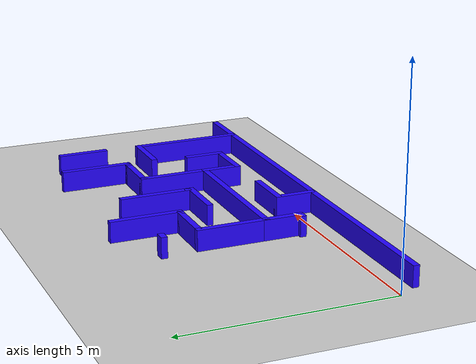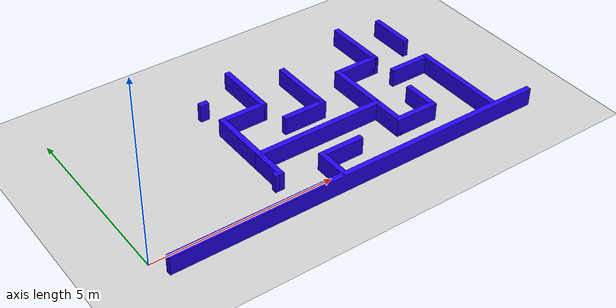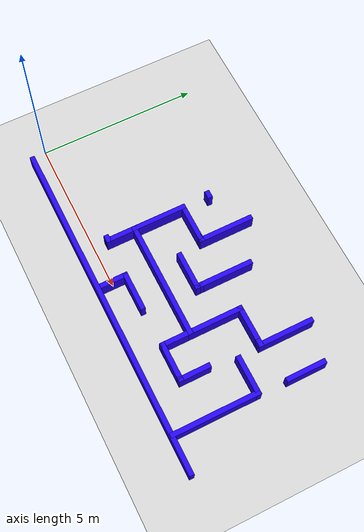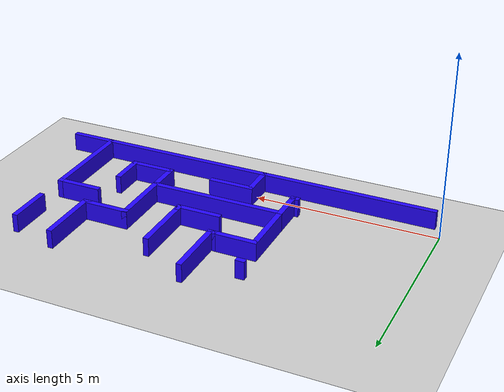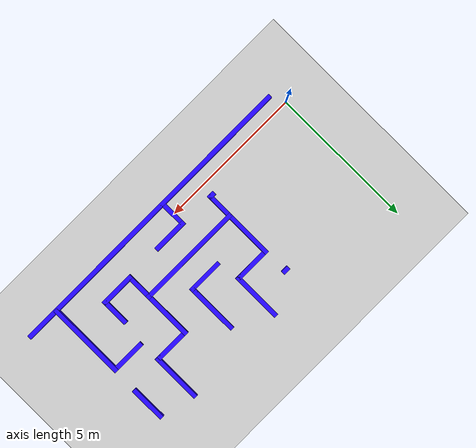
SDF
<sdf version="1.7">
 <world name="default">
  <model name="ground_plane">
   <static>1</static>
   <link name="link">
    <collision name="collision">
     <geometry><plane><normal>0 0 1</normal><size>100 100</size></plane></geometry>
     <surface><friction><ode><mu>100</mu><mu2>50</mu2></ode></friction></surface>
    </collision>
    <visual name="visual">
     <cast_shadows>0</cast_shadows>
     <geometry><plane><normal>0 0 1</normal><size>100 100</size></plane></geometry>
     <material>
      <script><uri>file://media/materials/scripts/gazebo.material</uri><name>Gazebo/Grey</name></script>
     </material>
    </visual>
   </link>
  </model>
  <model name="maze_blue">
   <link name="Wall_102">
    <pose>1.2875 -1.6595 0 0 0 -1.5708</pose>
    <visual name="Wall_102_Visual">
     <pose>0 0 0.25 0 -0 0</pose>
     <geometry><box><size>0.25 0.15 0.5</size></box></geometry>
     <material>
      <script><uri>file://media/materials/scripts/gazebo.material</uri><name>Gazebo/Grey</name></script>
      <ambient>0.14 0.012 1 1</ambient>
      <shader type="pixel"/>
     </material>
     <meta><layer>0</layer></meta>
    </visual>
    <collision name="Wall_102_Collision">
     <pose>0 0 0.25 0 -0 0</pose>
     <geometry><box><size>0.25 0.15 0.5</size></box></geometry>
     <surface>
      <friction>
       <ode><mu>1</mu><mu2>1</mu2><fdir1>0 0 0</fdir1><slip1>0</slip1><slip2>0</slip2></ode>
       <torsional>
        <coefficient>1</coefficient>
        <patch_radius>0</patch_radius>
        <surface_radius>0</surface_radius>
        <use_patch_radius>1</use_patch_radius>
        <ode><slip>0</slip></ode>
       </torsional>
      </friction>
      <bounce><restitution_coefficient>0</restitution_coefficient><threshold>1e+06</threshold></bounce>
      <contact>
       <collide_without_contact>0</collide_without_contact>
       <collide_without_contact_bitmask>1</collide_without_contact_bitmask>
       <collide_bitmask>1</collide_bitmask>
       <ode>
        <soft_cfm>0</soft_cfm>
        <soft_erp>0.2</soft_erp>
        <kp>1e+13</kp>
        <kd>1</kd>
        <max_vel>0.01</max_vel>
        <min_depth>0</min_depth>
       </ode>
       <bullet>
        <split_impulse>1</split_impulse>
        <split_impulse_penetration_threshold>-0.01</split_impulse_penetration_threshold>
        <soft_cfm>0</soft_cfm>
        <soft_erp>0.2</soft_erp>
        <kp>1e+13</kp>
        <kd>1</kd>
       </bullet>
      </contact>
     </surface>
    </collision>
   </link>
   <link name="Wall_103">
    <pose>0.7375 -1.7095 0 0 -0 3.14159</pose>
    <visual name="Wall_103_Visual">
     <pose>0 0 0.25 0 -0 0</pose>
     <geometry><box><size>1.25 0.15 0.5</size></box></geometry>
     <material>
      <script><uri>file://media/materials/scripts/gazebo.material</uri><name>Gazebo/Grey</name></script>
      <ambient>0.14 0.012 1 1</ambient>
      <shader type="pixel"/>
     </material>
     <meta><layer>0</layer></meta>
    </visual>
    <collision name="Wall_103_Collision">
     <pose>0 0 0.25 0 -0 0</pose>
     <geometry><box><size>1.25 0.15 0.5</size></box></geometry>
     <surface>
      <friction>
       <ode><mu>1</mu><mu2>1</mu2><fdir1>0 0 0</fdir1><slip1>0</slip1><slip2>0</slip2></ode>
       <torsional>
        <coefficient>1</coefficient>
        <patch_radius>0</patch_radius>
        <surface_radius>0</surface_radius>
        <use_patch_radius>1</use_patch_radius>
        <ode><slip>0</slip></ode>
       </torsional>
      </friction>
      <bounce><restitution_coefficient>0</restitution_coefficient><threshold>1e+06</threshold></bounce>
      <contact>
       <collide_without_contact>0</collide_without_contact>
       <collide_without_contact_bitmask>1</collide_without_contact_bitmask>
       <collide_bitmask>1</collide_bitmask>
       <ode>
        <soft_cfm>0</soft_cfm>
        <soft_erp>0.2</soft_erp>
        <kp>1e+13</kp>
        <kd>1</kd>
        <max_vel>0.01</max_vel>
        <min_depth>0</min_depth>
       </ode>
       <bullet>
        <split_impulse>1</split_impulse>
        <split_impulse_penetration_threshold>-0.01</split_impulse_penetration_threshold>
        <soft_cfm>0</soft_cfm>
        <soft_erp>0.2</soft_erp>
        <kp>1e+13</kp>
        <kd>1</kd>
       </bullet>
      </contact>
     </surface>
    </collision>
   </link>
   <link name="Wall_13">
    <pose>-1.2285 -3.3705 0 0 -0 0</pose>
    <visual name="Wall_13_Visual">
     <pose>0 0 0.25 0 -0 0</pose>
     <geometry><box><size>0.25 0.15 0.5</size></box></geometry>
     <material>
      <script><uri>file://media/materials/scripts/gazebo.material</uri><name>Gazebo/Grey</name></script>
      <ambient>0.14 0.012 1 1</ambient>
      <shader type="pixel"/>
     </material>
     <meta><layer>0</layer></meta>
    </visual>
    <collision name="Wall_13_Collision">
     <pose>0 0 0.25 0 -0 0</pose>
     <geometry><box><size>0.25 0.15 0.5</size></box></geometry>
     <surface>
      <friction>
       <ode><mu>1</mu><mu2>1</mu2><fdir1>0 0 0</fdir1><slip1>0</slip1><slip2>0</slip2></ode>
       <torsional>
        <coefficient>1</coefficient>
        <patch_radius>0</patch_radius>
        <surface_radius>0</surface_radius>
        <use_patch_radius>1</use_patch_radius>
        <ode><slip>0</slip></ode>
       </torsional>
      </friction>
      <bounce><restitution_coefficient>0</restitution_coefficient><threshold>1e+06</threshold></bounce>
      <contact>
       <collide_without_contact>0</collide_without_contact>
       <collide_without_contact_bitmask>1</collide_without_contact_bitmask>
       <collide_bitmask>1</collide_bitmask>
       <ode>
        <soft_cfm>0</soft_cfm>
        <soft_erp>0.2</soft_erp>
        <kp>1e+13</kp>
        <kd>1</kd>
        <max_vel>0.01</max_vel>
        <min_depth>0</min_depth>
       </ode>
       <bullet>
        <split_impulse>1</split_impulse>
        <split_impulse_penetration_threshold>-0.01</split_impulse_penetration_threshold>
        <soft_cfm>0</soft_cfm>
        <soft_erp>0.2</soft_erp>
        <kp>1e+13</kp>
        <kd>1</kd>
       </bullet>
      </contact>
     </surface>
    </collision>
   </link>
   <link name="Wall_14">
    <pose>-1.1785 -2.9455 0 0 -0 1.5708</pose>
    <visual name="Wall_14_Visual">
     <pose>0 0 0.25 0 -0 0</pose>
     <geometry><box><size>1 0.15 0.5</size></box></geometry>
     <material>
      <script><uri>file://media/materials/scripts/gazebo.material</uri><name>Gazebo/Grey</name></script>
      <ambient>0.14 0.012 1 1</ambient>
      <shader type="pixel"/>
     </material>
     <meta><layer>0</layer></meta>
    </visual>
    <collision name="Wall_14_Collision">
     <pose>0 0 0.25 0 -0 0</pose>
     <geometry><box><size>1 0.15 0.5</size></box></geometry>
     <surface>
      <friction>
       <ode><mu>1</mu><mu2>1</mu2><fdir1>0 0 0</fdir1><slip1>0</slip1><slip2>0</slip2></ode>
       <torsional>
        <coefficient>1</coefficient>
        <patch_radius>0</patch_radius>
        <surface_radius>0</surface_radius>
        <use_patch_radius>1</use_patch_radius>
        <ode><slip>0</slip></ode>
       </torsional>
      </friction>
      <bounce><restitution_coefficient>0</restitution_coefficient><threshold>1e+06</threshold></bounce>
      <contact>
       <collide_without_contact>0</collide_without_contact>
       <collide_without_contact_bitmask>1</collide_without_contact_bitmask>
       <collide_bitmask>1</collide_bitmask>
       <ode>
        <soft_cfm>0</soft_cfm>
        <soft_erp>0.2</soft_erp>
        <kp>1e+13</kp>
        <kd>1</kd>
        <max_vel>0.01</max_vel>
        <min_depth>0</min_depth>
       </ode>
       <bullet>
        <split_impulse>1</split_impulse>
        <split_impulse_penetration_threshold>-0.01</split_impulse_penetration_threshold>
        <soft_cfm>0</soft_cfm>
        <soft_erp>0.2</soft_erp>
        <kp>1e+13</kp>
        <kd>1</kd>
       </bullet>
      </contact>
     </surface>
    </collision>
   </link>
   <link name="Wall_15">
    <pose>0.6215 -2.5205 0 0 -0 0</pose>
    <visual name="Wall_15_Visual">
     <pose>0 0 0.25 0 -0 0</pose>
     <geometry><box><size>3.75 0.15 0.5</size></box></geometry>
     <material>
      <script><uri>file://media/materials/scripts/gazebo.material</uri><name>Gazebo/Grey</name></script>
      <ambient>0.14 0.012 1 1</ambient>
      <shader type="pixel"/>
     </material>
     <meta><layer>0</layer></meta>
    </visual>
    <collision name="Wall_15_Collision">
     <pose>0 0 0.25 0 -0 0</pose>
     <geometry><box><size>3.75 0.15 0.5</size></box></geometry>
     <surface>
      <friction>
       <ode><mu>1</mu><mu2>1</mu2><fdir1>0 0 0</fdir1><slip1>0</slip1><slip2>0</slip2></ode>
       <torsional>
        <coefficient>1</coefficient>
        <patch_radius>0</patch_radius>
        <surface_radius>0</surface_radius>
        <use_patch_radius>1</use_patch_radius>
        <ode><slip>0</slip></ode>
       </torsional>
      </friction>
      <bounce><restitution_coefficient>0</restitution_coefficient><threshold>1e+06</threshold></bounce>
      <contact>
       <collide_without_contact>0</collide_without_contact>
       <collide_without_contact_bitmask>1</collide_without_contact_bitmask>
       <collide_bitmask>1</collide_bitmask>
       <ode>
        <soft_cfm>0</soft_cfm>
        <soft_erp>0.2</soft_erp>
        <kp>1e+13</kp>
        <kd>1</kd>
        <max_vel>0.01</max_vel>
        <min_depth>0</min_depth>
       </ode>
       <bullet>
        <split_impulse>1</split_impulse>
        <split_impulse_penetration_threshold>-0.01</split_impulse_penetration_threshold>
        <soft_cfm>0</soft_cfm>
        <soft_erp>0.2</soft_erp>
        <kp>1e+13</kp>
        <kd>1</kd>
       </bullet>
      </contact>
     </surface>
    </collision>
   </link>
   <link name="Wall_16">
    <pose>2.4215 -2.9455 0 0 0 -1.5708</pose>
    <visual name="Wall_16_Visual">
     <pose>0 0 0.25 0 -0 0</pose>
     <geometry><box><size>1 0.15 0.5</size></box></geometry>
     <material>
      <script><uri>file://media/materials/scripts/gazebo.material</uri><name>Gazebo/Grey</name></script>
      <ambient>0.14 0.012 1 1</ambient>
      <shader type="pixel"/>
     </material>
     <meta><layer>0</layer></meta>
    </visual>
    <collision name="Wall_16_Collision">
     <pose>0 0 0.25 0 -0 0</pose>
     <geometry><box><size>1 0.15 0.5</size></box></geometry>
     <surface>
      <friction>
       <ode><mu>1</mu><mu2>1</mu2><fdir1>0 0 0</fdir1><slip1>0</slip1><slip2>0</slip2></ode>
       <torsional>
        <coefficient>1</coefficient>
        <patch_radius>0</patch_radius>
        <surface_radius>0</surface_radius>
        <use_patch_radius>1</use_patch_radius>
        <ode><slip>0</slip></ode>
       </torsional>
      </friction>
      <bounce><restitution_coefficient>0</restitution_coefficient><threshold>1e+06</threshold></bounce>
      <contact>
       <collide_without_contact>0</collide_without_contact>
       <collide_without_contact_bitmask>1</collide_without_contact_bitmask>
       <collide_bitmask>1</collide_bitmask>
       <ode>
        <soft_cfm>0</soft_cfm>
        <soft_erp>0.2</soft_erp>
        <kp>1e+13</kp>
        <kd>1</kd>
        <max_vel>0.01</max_vel>
        <min_depth>0</min_depth>
       </ode>
       <bullet>
        <split_impulse>1</split_impulse>
        <split_impulse_penetration_threshold>-0.01</split_impulse_penetration_threshold>
        <soft_cfm>0</soft_cfm>
        <soft_erp>0.2</soft_erp>
        <kp>1e+13</kp>
        <kd>1</kd>
       </bullet>
      </contact>
     </surface>
    </collision>
   </link>
   <link name="Wall_17">
    <pose>2.9715 -3.3705 0 0 -0 0</pose>
    <visual name="Wall_17_Visual">
     <pose>0 0 0.25 0 -0 0</pose>
     <geometry><box><size>1.25 0.15 0.5</size></box></geometry>
     <material>
      <script><uri>file://media/materials/scripts/gazebo.material</uri><name>Gazebo/Grey</name></script>
      <ambient>0.14 0.012 1 1</ambient>
      <shader type="pixel"/>
     </material>
     <meta><layer>0</layer></meta>
    </visual>
    <collision name="Wall_17_Collision">
     <pose>0 0 0.25 0 -0 0</pose>
     <geometry><box><size>1.25 0.15 0.5</size></box></geometry>
     <surface>
      <friction>
       <ode><mu>1</mu><mu2>1</mu2><fdir1>0 0 0</fdir1><slip1>0</slip1><slip2>0</slip2></ode>
       <torsional>
        <coefficient>1</coefficient>
        <patch_radius>0</patch_radius>
        <surface_radius>0</surface_radius>
        <use_patch_radius>1</use_patch_radius>
        <ode><slip>0</slip></ode>
       </torsional>
      </friction>
      <bounce><restitution_coefficient>0</restitution_coefficient><threshold>1e+06</threshold></bounce>
      <contact>
       <collide_without_contact>0</collide_without_contact>
       <collide_without_contact_bitmask>1</collide_without_contact_bitmask>
       <collide_bitmask>1</collide_bitmask>
       <ode>
        <soft_cfm>0</soft_cfm>
        <soft_erp>0.2</soft_erp>
        <kp>1e+13</kp>
        <kd>1</kd>
        <max_vel>0.01</max_vel>
        <min_depth>0</min_depth>
       </ode>
       <bullet>
        <split_impulse>1</split_impulse>
        <split_impulse_penetration_threshold>-0.01</split_impulse_penetration_threshold>
        <soft_cfm>0</soft_cfm>
        <soft_erp>0.2</soft_erp>
        <kp>1e+13</kp>
        <kd>1</kd>
       </bullet>
      </contact>
     </surface>
    </collision>
   </link>
   <link name="Wall_18">
    <pose>3.5215 -2.9455 0 0 -0 1.5708</pose>
    <visual name="Wall_18_Visual">
     <pose>0 0 0.25 0 -0 0</pose>
     <geometry><box><size>1 0.15 0.5</size></box></geometry>
     <material>
      <script><uri>file://media/materials/scripts/gazebo.material</uri><name>Gazebo/Grey</name></script>
      <ambient>0.14 0.012 1 1</ambient>
      <shader type="pixel"/>
     </material>
     <meta><layer>0</layer></meta>
    </visual>
    <collision name="Wall_18_Collision">
     <pose>0 0 0.25 0 -0 0</pose>
     <geometry><box><size>1 0.15 0.5</size></box></geometry>
     <surface>
      <friction>
       <ode><mu>1</mu><mu2>1</mu2><fdir1>0 0 0</fdir1><slip1>0</slip1><slip2>0</slip2></ode>
       <torsional>
        <coefficient>1</coefficient>
        <patch_radius>0</patch_radius>
        <surface_radius>0</surface_radius>
        <use_patch_radius>1</use_patch_radius>
        <ode><slip>0</slip></ode>
       </torsional>
      </friction>
      <bounce><restitution_coefficient>0</restitution_coefficient><threshold>1e+06</threshold></bounce>
      <contact>
       <collide_without_contact>0</collide_without_contact>
       <collide_without_contact_bitmask>1</collide_without_contact_bitmask>
       <collide_bitmask>1</collide_bitmask>
       <ode>
        <soft_cfm>0</soft_cfm>
        <soft_erp>0.2</soft_erp>
        <kp>1e+13</kp>
        <kd>1</kd>
        <max_vel>0.01</max_vel>
        <min_depth>0</min_depth>
       </ode>
       <bullet>
        <split_impulse>1</split_impulse>
        <split_impulse_penetration_threshold>-0.01</split_impulse_penetration_threshold>
        <soft_cfm>0</soft_cfm>
        <soft_erp>0.2</soft_erp>
        <kp>1e+13</kp>
        <kd>1</kd>
       </bullet>
      </contact>
     </surface>
    </collision>
   </link>
   <link name="Wall_20">
    <pose>0.0445 -3.8205 0 0 -0 1.5708</pose>
    <visual name="Wall_20_Visual">
     <pose>0 0 0.25 0 -0 0</pose>
     <geometry><box><size>1 0.15 0.5</size></box></geometry>
     <material>
      <script><uri>file://media/materials/scripts/gazebo.material</uri><name>Gazebo/Grey</name></script>
      <ambient>0.14 0.012 1 1</ambient>
      <shader type="pixel"/>
     </material>
     <meta><layer>0</layer></meta>
    </visual>
    <collision name="Wall_20_Collision">
     <pose>0 0 0.25 0 -0 0</pose>
     <geometry><box><size>1 0.15 0.5</size></box></geometry>
     <surface>
      <friction>
       <ode><mu>1</mu><mu2>1</mu2><fdir1>0 0 0</fdir1><slip1>0</slip1><slip2>0</slip2></ode>
       <torsional>
        <coefficient>1</coefficient>
        <patch_radius>0</patch_radius>
        <surface_radius>0</surface_radius>
        <use_patch_radius>1</use_patch_radius>
        <ode><slip>0</slip></ode>
       </torsional>
      </friction>
      <bounce><restitution_coefficient>0</restitution_coefficient><threshold>1e+06</threshold></bounce>
      <contact>
       <collide_without_contact>0</collide_without_contact>
       <collide_without_contact_bitmask>1</collide_without_contact_bitmask>
       <collide_bitmask>1</collide_bitmask>
       <ode>
        <soft_cfm>0</soft_cfm>
        <soft_erp>0.2</soft_erp>
        <kp>1e+13</kp>
        <kd>1</kd>
        <max_vel>0.01</max_vel>
        <min_depth>0</min_depth>
       </ode>
       <bullet>
        <split_impulse>1</split_impulse>
        <split_impulse_penetration_threshold>-0.01</split_impulse_penetration_threshold>
        <soft_cfm>0</soft_cfm>
        <soft_erp>0.2</soft_erp>
        <kp>1e+13</kp>
        <kd>1</kd>
       </bullet>
      </contact>
     </surface>
    </collision>
   </link>
   <link name="Wall_21">
    <pose>0.5945 -3.3955 0 0 -0 0</pose>
    <visual name="Wall_21_Visual">
     <pose>0 0 0.25 0 -0 0</pose>
     <geometry><box><size>1.25 0.15 0.5</size></box></geometry>
     <material>
      <script><uri>file://media/materials/scripts/gazebo.material</uri><name>Gazebo/Grey</name></script>
      <ambient>0.14 0.012 1 1</ambient>
      <shader type="pixel"/>
     </material>
     <meta><layer>0</layer></meta>
    </visual>
    <collision name="Wall_21_Collision">
     <pose>0 0 0.25 0 -0 0</pose>
     <geometry><box><size>1.25 0.15 0.5</size></box></geometry>
     <surface>
      <friction>
       <ode><mu>1</mu><mu2>1</mu2><fdir1>0 0 0</fdir1><slip1>0</slip1><slip2>0</slip2></ode>
       <torsional>
        <coefficient>1</coefficient>
        <patch_radius>0</patch_radius>
        <surface_radius>0</surface_radius>
        <use_patch_radius>1</use_patch_radius>
        <ode><slip>0</slip></ode>
       </torsional>
      </friction>
      <bounce><restitution_coefficient>0</restitution_coefficient><threshold>1e+06</threshold></bounce>
      <contact>
       <collide_without_contact>0</collide_without_contact>
       <collide_without_contact_bitmask>1</collide_without_contact_bitmask>
       <collide_bitmask>1</collide_bitmask>
       <ode>
        <soft_cfm>0</soft_cfm>
        <soft_erp>0.2</soft_erp>
        <kp>1e+13</kp>
        <kd>1</kd>
        <max_vel>0.01</max_vel>
        <min_depth>0</min_depth>
       </ode>
       <bullet>
        <split_impulse>1</split_impulse>
        <split_impulse_penetration_threshold>-0.01</split_impulse_penetration_threshold>
        <soft_cfm>0</soft_cfm>
        <soft_erp>0.2</soft_erp>
        <kp>1e+13</kp>
        <kd>1</kd>
       </bullet>
      </contact>
     </surface>
    </collision>
   </link>
   <link name="Wall_23">
    <pose>4.8015 -2.9455 0 0 -0 1.5708</pose>
    <visual name="Wall_23_Visual">
     <pose>0 0 0.25 0 -0 0</pose>
     <geometry><box><size>2.75 0.15 0.5</size></box></geometry>
     <material>
      <script><uri>file://media/materials/scripts/gazebo.material</uri><name>Gazebo/Grey</name></script>
      <ambient>0.14 0.012 1 1</ambient>
      <shader type="pixel"/>
     </material>
     <meta><layer>0</layer></meta>
    </visual>
    <collision name="Wall_23_Collision">
     <pose>0 0 0.25 0 -0 0</pose>
     <geometry><box><size>2.75 0.15 0.5</size></box></geometry>
     <surface>
      <friction>
       <ode><mu>1</mu><mu2>1</mu2><fdir1>0 0 0</fdir1><slip1>0</slip1><slip2>0</slip2></ode>
       <torsional>
        <coefficient>1</coefficient>
        <patch_radius>0</patch_radius>
        <surface_radius>0</surface_radius>
        <use_patch_radius>1</use_patch_radius>
        <ode><slip>0</slip></ode>
       </torsional>
      </friction>
      <bounce><restitution_coefficient>0</restitution_coefficient><threshold>1e+06</threshold></bounce>
      <contact>
       <collide_without_contact>0</collide_without_contact>
       <collide_without_contact_bitmask>1</collide_without_contact_bitmask>
       <collide_bitmask>1</collide_bitmask>
       <ode>
        <soft_cfm>0</soft_cfm>
        <soft_erp>0.2</soft_erp>
        <kp>1e+13</kp>
        <kd>1</kd>
        <max_vel>0.01</max_vel>
        <min_depth>0</min_depth>
       </ode>
       <bullet>
        <split_impulse>1</split_impulse>
        <split_impulse_penetration_threshold>-0.01</split_impulse_penetration_threshold>
        <soft_cfm>0</soft_cfm>
        <soft_erp>0.2</soft_erp>
        <kp>1e+13</kp>
        <kd>1</kd>
       </bullet>
      </contact>
     </surface>
    </collision>
   </link>
   <link name="Wall_24">
    <pose>4.2515 -1.6455 0 0 -0 3.14159</pose>
    <visual name="Wall_24_Visual">
     <pose>0 0 0.25 0 -0 0</pose>
     <geometry><box><size>1.25 0.15 0.5</size></box></geometry>
     <material>
      <script><uri>file://media/materials/scripts/gazebo.material</uri><name>Gazebo/Grey</name></script>
      <ambient>0.14 0.012 1 1</ambient>
      <shader type="pixel"/>
     </material>
     <meta><layer>0</layer></meta>
    </visual>
    <collision name="Wall_24_Collision">
     <pose>0 0 0.25 0 -0 0</pose>
     <geometry><box><size>1.25 0.15 0.5</size></box></geometry>
     <surface>
      <friction>
       <ode><mu>1</mu><mu2>1</mu2><fdir1>0 0 0</fdir1><slip1>0</slip1><slip2>0</slip2></ode>
       <torsional>
        <coefficient>1</coefficient>
        <patch_radius>0</patch_radius>
        <surface_radius>0</surface_radius>
        <use_patch_radius>1</use_patch_radius>
        <ode><slip>0</slip></ode>
       </torsional>
      </friction>
      <bounce><restitution_coefficient>0</restitution_coefficient><threshold>1e+06</threshold></bounce>
      <contact>
       <collide_without_contact>0</collide_without_contact>
       <collide_without_contact_bitmask>1</collide_without_contact_bitmask>
       <collide_bitmask>1</collide_bitmask>
       <ode>
        <soft_cfm>0</soft_cfm>
        <soft_erp>0.2</soft_erp>
        <kp>1e+13</kp>
        <kd>1</kd>
        <max_vel>0.01</max_vel>
        <min_depth>0</min_depth>
       </ode>
       <bullet>
        <split_impulse>1</split_impulse>
        <split_impulse_penetration_threshold>-0.01</split_impulse_penetration_threshold>
        <soft_cfm>0</soft_cfm>
        <soft_erp>0.2</soft_erp>
        <kp>1e+13</kp>
        <kd>1</kd>
       </bullet>
      </contact>
     </surface>
    </collision>
   </link>
   <link name="Wall_34">
    <pose>-1.1785 -1.7205 0 0 -0 1.5708</pose>
    <visual name="Wall_34_Visual">
     <pose>0 0 0.25 0 -0 0</pose>
     <geometry><box><size>1.75 0.15 0.5</size></box></geometry>
     <material>
      <script><uri>file://media/materials/scripts/gazebo.material</uri><name>Gazebo/Grey</name></script>
      <ambient>0.14 0.012 1 1</ambient>
      <shader type="pixel"/>
     </material>
     <meta><layer>0</layer></meta>
    </visual>
    <collision name="Wall_34_Collision">
     <pose>0 0 0.25 0 -0 0</pose>
     <geometry><box><size>1.75 0.15 0.5</size></box></geometry>
     <surface>
      <friction>
       <ode><mu>1</mu><mu2>1</mu2><fdir1>0 0 0</fdir1><slip1>0</slip1><slip2>0</slip2></ode>
       <torsional>
        <coefficient>1</coefficient>
        <patch_radius>0</patch_radius>
        <surface_radius>0</surface_radius>
        <use_patch_radius>1</use_patch_radius>
        <ode><slip>0</slip></ode>
       </torsional>
      </friction>
      <bounce><restitution_coefficient>0</restitution_coefficient><threshold>1e+06</threshold></bounce>
      <contact>
       <collide_without_contact>0</collide_without_contact>
       <collide_without_contact_bitmask>1</collide_without_contact_bitmask>
       <collide_bitmask>1</collide_bitmask>
       <ode>
        <soft_cfm>0</soft_cfm>
        <soft_erp>0.2</soft_erp>
        <kp>1e+13</kp>
        <kd>1</kd>
        <max_vel>0.01</max_vel>
        <min_depth>0</min_depth>
       </ode>
       <bullet>
        <split_impulse>1</split_impulse>
        <split_impulse_penetration_threshold>-0.01</split_impulse_penetration_threshold>
        <soft_cfm>0</soft_cfm>
        <soft_erp>0.2</soft_erp>
        <kp>1e+13</kp>
        <kd>1</kd>
       </bullet>
      </contact>
     </surface>
    </collision>
   </link>
   <link name="Wall_35">
    <pose>-0.6285 -0.9205 0 0 -0 0</pose>
    <visual name="Wall_35_Visual">
     <pose>0 0 0.25 0 -0 0</pose>
     <geometry><box><size>1.25 0.15 0.5</size></box></geometry>
     <material>
      <script><uri>file://media/materials/scripts/gazebo.material</uri><name>Gazebo/Grey</name></script>
      <ambient>0.14 0.012 1 1</ambient>
      <shader type="pixel"/>
     </material>
     <meta><layer>0</layer></meta>
    </visual>
    <collision name="Wall_35_Collision">
     <pose>0 0 0.25 0 -0 0</pose>
     <geometry><box><size>1.25 0.15 0.5</size></box></geometry>
     <surface>
      <friction>
       <ode><mu>1</mu><mu2>1</mu2><fdir1>0 0 0</fdir1><slip1>0</slip1><slip2>0</slip2></ode>
       <torsional>
        <coefficient>1</coefficient>
        <patch_radius>0</patch_radius>
        <surface_radius>0</surface_radius>
        <use_patch_radius>1</use_patch_radius>
        <ode><slip>0</slip></ode>
       </torsional>
      </friction>
      <bounce><restitution_coefficient>0</restitution_coefficient><threshold>1e+06</threshold></bounce>
      <contact>
       <collide_without_contact>0</collide_without_contact>
       <collide_without_contact_bitmask>1</collide_without_contact_bitmask>
       <collide_bitmask>1</collide_bitmask>
       <ode>
        <soft_cfm>0</soft_cfm>
        <soft_erp>0.2</soft_erp>
        <kp>1e+13</kp>
        <kd>1</kd>
        <max_vel>0.01</max_vel>
        <min_depth>0</min_depth>
       </ode>
       <bullet>
        <split_impulse>1</split_impulse>
        <split_impulse_penetration_threshold>-0.01</split_impulse_penetration_threshold>
        <soft_cfm>0</soft_cfm>
        <soft_erp>0.2</soft_erp>
        <kp>1e+13</kp>
        <kd>1</kd>
       </bullet>
      </contact>
     </surface>
    </collision>
   </link>
   <link name="Wall_36">
    <pose>-0.0285 -0.9205 0 0 -0 0</pose>
    <visual name="Wall_36_Visual">
     <pose>0 0 0.25 0 -0 0</pose>
     <geometry><box><size>0.25 0.15 0.5</size></box></geometry>
     <material>
      <script><uri>file://media/materials/scripts/gazebo.material</uri><name>Gazebo/Grey</name></script>
      <ambient>0.14 0.012 1 1</ambient>
      <shader type="pixel"/>
     </material>
     <meta><layer>0</layer></meta>
    </visual>
    <collision name="Wall_36_Collision">
     <pose>0 0 0.25 0 -0 0</pose>
     <geometry><box><size>0.25 0.15 0.5</size></box></geometry>
     <surface>
      <friction>
       <ode><mu>1</mu><mu2>1</mu2><fdir1>0 0 0</fdir1><slip1>0</slip1><slip2>0</slip2></ode>
       <torsional>
        <coefficient>1</coefficient>
        <patch_radius>0</patch_radius>
        <surface_radius>0</surface_radius>
        <use_patch_radius>1</use_patch_radius>
        <ode><slip>0</slip></ode>
       </torsional>
      </friction>
      <bounce><restitution_coefficient>0</restitution_coefficient><threshold>1e+06</threshold></bounce>
      <contact>
       <collide_without_contact>0</collide_without_contact>
       <collide_without_contact_bitmask>1</collide_without_contact_bitmask>
       <collide_bitmask>1</collide_bitmask>
       <ode>
        <soft_cfm>0</soft_cfm>
        <soft_erp>0.2</soft_erp>
        <kp>1e+13</kp>
        <kd>1</kd>
        <max_vel>0.01</max_vel>
        <min_depth>0</min_depth>
       </ode>
       <bullet>
        <split_impulse>1</split_impulse>
        <split_impulse_penetration_threshold>-0.01</split_impulse_penetration_threshold>
        <soft_cfm>0</soft_cfm>
        <soft_erp>0.2</soft_erp>
        <kp>1e+13</kp>
        <kd>1</kd>
       </bullet>
      </contact>
     </surface>
    </collision>
   </link>
   <link name="Wall_37">
    <pose>0.0215 -0.1205 0 0 -0 1.5708</pose>
    <visual name="Wall_37_Visual">
     <pose>0 0 0.25 0 -0 0</pose>
     <geometry><box><size>1.75 0.15 0.5</size></box></geometry>
     <material>
      <script><uri>file://media/materials/scripts/gazebo.material</uri><name>Gazebo/Grey</name></script>
      <ambient>0.14 0.012 1 1</ambient>
      <shader type="pixel"/>
     </material>
     <meta><layer>0</layer></meta>
    </visual>
    <collision name="Wall_37_Collision">
     <pose>0 0 0.25 0 -0 0</pose>
     <geometry><box><size>1.75 0.15 0.5</size></box></geometry>
     <surface>
      <friction>
       <ode><mu>1</mu><mu2>1</mu2><fdir1>0 0 0</fdir1><slip1>0</slip1><slip2>0</slip2></ode>
       <torsional>
        <coefficient>1</coefficient>
        <patch_radius>0</patch_radius>
        <surface_radius>0</surface_radius>
        <use_patch_radius>1</use_patch_radius>
        <ode><slip>0</slip></ode>
       </torsional>
      </friction>
      <bounce><restitution_coefficient>0</restitution_coefficient><threshold>1e+06</threshold></bounce>
      <contact>
       <collide_without_contact>0</collide_without_contact>
       <collide_without_contact_bitmask>1</collide_without_contact_bitmask>
       <collide_bitmask>1</collide_bitmask>
       <ode>
        <soft_cfm>0</soft_cfm>
        <soft_erp>0.2</soft_erp>
        <kp>1e+13</kp>
        <kd>1</kd>
        <max_vel>0.01</max_vel>
        <min_depth>0</min_depth>
       </ode>
       <bullet>
        <split_impulse>1</split_impulse>
        <split_impulse_penetration_threshold>-0.01</split_impulse_penetration_threshold>
        <soft_cfm>0</soft_cfm>
        <soft_erp>0.2</soft_erp>
        <kp>1e+13</kp>
        <kd>1</kd>
       </bullet>
      </contact>
     </surface>
    </collision>
   </link>
   <link name="Wall_48">
    <pose>1.2875 -0.8095 0 0 0 -1.5708</pose>
    <visual name="Wall_48_Visual">
     <pose>0 0 0.25 0 -0 0</pose>
     <geometry><box><size>1.75 0.15 0.5</size></box></geometry>
     <material>
      <script><uri>file://media/materials/scripts/gazebo.material</uri><name>Gazebo/Grey</name></script>
      <ambient>0.14 0.012 1 1</ambient>
      <shader type="pixel"/>
     </material>
     <meta><layer>0</layer></meta>
    </visual>
    <collision name="Wall_48_Collision">
     <pose>0 0 0.25 0 -0 0</pose>
     <geometry><box><size>1.75 0.15 0.5</size></box></geometry>
     <surface>
      <friction>
       <ode><mu>1</mu><mu2>1</mu2><fdir1>0 0 0</fdir1><slip1>0</slip1><slip2>0</slip2></ode>
       <torsional>
        <coefficient>1</coefficient>
        <patch_radius>0</patch_radius>
        <surface_radius>0</surface_radius>
        <use_patch_radius>1</use_patch_radius>
        <ode><slip>0</slip></ode>
       </torsional>
      </friction>
      <bounce><restitution_coefficient>0</restitution_coefficient><threshold>1e+06</threshold></bounce>
      <contact>
       <collide_without_contact>0</collide_without_contact>
       <collide_without_contact_bitmask>1</collide_without_contact_bitmask>
       <collide_bitmask>1</collide_bitmask>
       <ode>
        <soft_cfm>0</soft_cfm>
        <soft_erp>0.2</soft_erp>
        <kp>1e+13</kp>
        <kd>1</kd>
        <max_vel>0.01</max_vel>
        <min_depth>0</min_depth>
       </ode>
       <bullet>
        <split_impulse>1</split_impulse>
        <split_impulse_penetration_threshold>-0.01</split_impulse_penetration_threshold>
        <soft_cfm>0</soft_cfm>
        <soft_erp>0.2</soft_erp>
        <kp>1e+13</kp>
        <kd>1</kd>
       </bullet>
      </contact>
     </surface>
    </collision>
   </link>
   <link name="Wall_52">
    <pose>2.4215 -1.7205 0 0 -0 1.5708</pose>
    <visual name="Wall_52_Visual">
     <pose>0 0 0.25 0 -0 0</pose>
     <geometry><box><size>1.75 0.15 0.5</size></box></geometry>
     <material>
      <script><uri>file://media/materials/scripts/gazebo.material</uri><name>Gazebo/Grey</name></script>
      <ambient>0.14 0.012 1 1</ambient>
      <shader type="pixel"/>
     </material>
     <meta><layer>0</layer></meta>
    </visual>
    <collision name="Wall_52_Collision">
     <pose>0 0 0.25 0 -0 0</pose>
     <geometry><box><size>1.75 0.15 0.5</size></box></geometry>
     <surface>
      <friction>
       <ode><mu>1</mu><mu2>1</mu2><fdir1>0 0 0</fdir1><slip1>0</slip1><slip2>0</slip2></ode>
       <torsional>
        <coefficient>1</coefficient>
        <patch_radius>0</patch_radius>
        <surface_radius>0</surface_radius>
        <use_patch_radius>1</use_patch_radius>
        <ode><slip>0</slip></ode>
       </torsional>
      </friction>
      <bounce><restitution_coefficient>0</restitution_coefficient><threshold>1e+06</threshold></bounce>
      <contact>
       <collide_without_contact>0</collide_without_contact>
       <collide_without_contact_bitmask>1</collide_without_contact_bitmask>
       <collide_bitmask>1</collide_bitmask>
       <ode>
        <soft_cfm>0</soft_cfm>
        <soft_erp>0.2</soft_erp>
        <kp>1e+13</kp>
        <kd>1</kd>
        <max_vel>0.01</max_vel>
        <min_depth>0</min_depth>
       </ode>
       <bullet>
        <split_impulse>1</split_impulse>
        <split_impulse_penetration_threshold>-0.01</split_impulse_penetration_threshold>
        <soft_cfm>0</soft_cfm>
        <soft_erp>0.2</soft_erp>
        <kp>1e+13</kp>
        <kd>1</kd>
       </bullet>
      </contact>
     </surface>
    </collision>
   </link>
   <link name="Wall_53">
    <pose>2.9715 -0.9205 0 0 -0 0</pose>
    <visual name="Wall_53_Visual">
     <pose>0 0 0.25 0 -0 0</pose>
     <geometry><box><size>1.25 0.15 0.5</size></box></geometry>
     <material>
      <script><uri>file://media/materials/scripts/gazebo.material</uri><name>Gazebo/Grey</name></script>
      <ambient>0.14 0.012 1 1</ambient>
      <shader type="pixel"/>
     </material>
     <meta><layer>0</layer></meta>
    </visual>
    <collision name="Wall_53_Collision">
     <pose>0 0 0.25 0 -0 0</pose>
     <geometry><box><size>1.25 0.15 0.5</size></box></geometry>
     <surface>
      <friction>
       <ode><mu>1</mu><mu2>1</mu2><fdir1>0 0 0</fdir1><slip1>0</slip1><slip2>0</slip2></ode>
       <torsional>
        <coefficient>1</coefficient>
        <patch_radius>0</patch_radius>
        <surface_radius>0</surface_radius>
        <use_patch_radius>1</use_patch_radius>
        <ode><slip>0</slip></ode>
       </torsional>
      </friction>
      <bounce><restitution_coefficient>0</restitution_coefficient><threshold>1e+06</threshold></bounce>
      <contact>
       <collide_without_contact>0</collide_without_contact>
       <collide_without_contact_bitmask>1</collide_without_contact_bitmask>
       <collide_bitmask>1</collide_bitmask>
       <ode>
        <soft_cfm>0</soft_cfm>
        <soft_erp>0.2</soft_erp>
        <kp>1e+13</kp>
        <kd>1</kd>
        <max_vel>0.01</max_vel>
        <min_depth>0</min_depth>
       </ode>
       <bullet>
        <split_impulse>1</split_impulse>
        <split_impulse_penetration_threshold>-0.01</split_impulse_penetration_threshold>
        <soft_cfm>0</soft_cfm>
        <soft_erp>0.2</soft_erp>
        <kp>1e+13</kp>
        <kd>1</kd>
       </bullet>
      </contact>
     </surface>
    </collision>
   </link>
   <link name="Wall_54">
    <pose>3.5715 -0.9205 0 0 -0 0</pose>
    <visual name="Wall_54_Visual">
     <pose>0 0 0.25 0 -0 0</pose>
     <geometry><box><size>0.25 0.15 0.5</size></box></geometry>
     <material>
      <script><uri>file://media/materials/scripts/gazebo.material</uri><name>Gazebo/Grey</name></script>
      <ambient>0.14 0.012 1 1</ambient>
      <shader type="pixel"/>
     </material>
     <meta><layer>0</layer></meta>
    </visual>
    <collision name="Wall_54_Collision">
     <pose>0 0 0.25 0 -0 0</pose>
     <geometry><box><size>0.25 0.15 0.5</size></box></geometry>
     <surface>
      <friction>
       <ode><mu>1</mu><mu2>1</mu2><fdir1>0 0 0</fdir1><slip1>0</slip1><slip2>0</slip2></ode>
       <torsional>
        <coefficient>1</coefficient>
        <patch_radius>0</patch_radius>
        <surface_radius>0</surface_radius>
        <use_patch_radius>1</use_patch_radius>
        <ode><slip>0</slip></ode>
       </torsional>
      </friction>
      <bounce><restitution_coefficient>0</restitution_coefficient><threshold>1e+06</threshold></bounce>
      <contact>
       <collide_without_contact>0</collide_without_contact>
       <collide_without_contact_bitmask>1</collide_without_contact_bitmask>
       <collide_bitmask>1</collide_bitmask>
       <ode>
        <soft_cfm>0</soft_cfm>
        <soft_erp>0.2</soft_erp>
        <kp>1e+13</kp>
        <kd>1</kd>
        <max_vel>0.01</max_vel>
        <min_depth>0</min_depth>
       </ode>
       <bullet>
        <split_impulse>1</split_impulse>
        <split_impulse_penetration_threshold>-0.01</split_impulse_penetration_threshold>
        <soft_cfm>0</soft_cfm>
        <soft_erp>0.2</soft_erp>
        <kp>1e+13</kp>
        <kd>1</kd>
       </bullet>
      </contact>
     </surface>
    </collision>
   </link>
   <link name="Wall_55">
    <pose>3.6215 -0.1205 0 0 -0 1.5708</pose>
    <visual name="Wall_55_Visual">
     <pose>0 0 0.25 0 -0 0</pose>
     <geometry><box><size>1.75 0.15 0.5</size></box></geometry>
     <material>
      <script><uri>file://media/materials/scripts/gazebo.material</uri><name>Gazebo/Grey</name></script>
      <ambient>0.14 0.012 1 1</ambient>
      <shader type="pixel"/>
     </material>
     <meta><layer>0</layer></meta>
    </visual>
    <collision name="Wall_55_Collision">
     <pose>0 0 0.25 0 -0 0</pose>
     <geometry><box><size>1.75 0.15 0.5</size></box></geometry>
     <surface>
      <friction>
       <ode><mu>1</mu><mu2>1</mu2><fdir1>0 0 0</fdir1><slip1>0</slip1><slip2>0</slip2></ode>
       <torsional>
        <coefficient>1</coefficient>
        <patch_radius>0</patch_radius>
        <surface_radius>0</surface_radius>
        <use_patch_radius>1</use_patch_radius>
        <ode><slip>0</slip></ode>
       </torsional>
      </friction>
      <bounce><restitution_coefficient>0</restitution_coefficient><threshold>1e+06</threshold></bounce>
      <contact>
       <collide_without_contact>0</collide_without_contact>
       <collide_without_contact_bitmask>1</collide_without_contact_bitmask>
       <collide_bitmask>1</collide_bitmask>
       <ode>
        <soft_cfm>0</soft_cfm>
        <soft_erp>0.2</soft_erp>
        <kp>1e+13</kp>
        <kd>1</kd>
        <max_vel>0.01</max_vel>
        <min_depth>0</min_depth>
       </ode>
       <bullet>
        <split_impulse>1</split_impulse>
        <split_impulse_penetration_threshold>-0.01</split_impulse_penetration_threshold>
        <soft_cfm>0</soft_cfm>
        <soft_erp>0.2</soft_erp>
        <kp>1e+13</kp>
        <kd>1</kd>
       </bullet>
      </contact>
     </surface>
    </collision>
   </link>
   <link name="Wall_57">
    <pose>4.8375 -0.1595 0 0 0 -1.5708</pose>
    <visual name="Wall_57_Visual">
     <pose>0 0 0.25 0 -0 0</pose>
     <geometry><box><size>1.25 0.15 0.5</size></box></geometry>
     <material>
      <script><uri>file://media/materials/scripts/gazebo.material</uri><name>Gazebo/Grey</name></script>
      <ambient>0.14 0.012 1 1</ambient>
      <shader type="pixel"/>
     </material>
     <meta><layer>0</layer></meta>
    </visual>
    <collision name="Wall_57_Collision">
     <pose>0 0 0.25 0 -0 0</pose>
     <geometry><box><size>1.25 0.15 0.5</size></box></geometry>
     <surface>
      <friction>
       <ode><mu>1</mu><mu2>1</mu2><fdir1>0 0 0</fdir1><slip1>0</slip1><slip2>0</slip2></ode>
       <torsional>
        <coefficient>1</coefficient>
        <patch_radius>0</patch_radius>
        <surface_radius>0</surface_radius>
        <use_patch_radius>1</use_patch_radius>
        <ode><slip>0</slip></ode>
       </torsional>
      </friction>
      <bounce><restitution_coefficient>0</restitution_coefficient><threshold>1e+06</threshold></bounce>
      <contact>
       <collide_without_contact>0</collide_without_contact>
       <collide_without_contact_bitmask>1</collide_without_contact_bitmask>
       <collide_bitmask>1</collide_bitmask>
       <ode>
        <soft_cfm>0</soft_cfm>
        <soft_erp>0.2</soft_erp>
        <kp>1e+13</kp>
        <kd>1</kd>
        <max_vel>0.01</max_vel>
        <min_depth>0</min_depth>
       </ode>
       <bullet>
        <split_impulse>1</split_impulse>
        <split_impulse_penetration_threshold>-0.01</split_impulse_penetration_threshold>
        <soft_cfm>0</soft_cfm>
        <soft_erp>0.2</soft_erp>
        <kp>1e+13</kp>
        <kd>1</kd>
       </bullet>
      </contact>
     </surface>
    </collision>
   </link>
   <link name="Wall_6">
    <pose>0.6185 -4.2775 0 0 -0 0</pose>
    <visual name="Wall_6_Visual">
     <pose>0 0 0.25 0 -0 0</pose>
     <geometry><box><size>10.75 0.15 0.5</size></box></geometry>
     <material>
      <script><uri>file://media/materials/scripts/gazebo.material</uri><name>Gazebo/Grey</name></script>
      <ambient>0.14 0.012 1 1</ambient>
      <shader type="pixel"/>
     </material>
     <meta><layer>0</layer></meta>
    </visual>
    <collision name="Wall_6_Collision">
     <pose>0 0 0.25 0 -0 0</pose>
     <geometry><box><size>10.75 0.15 0.5</size></box></geometry>
     <surface>
      <friction>
       <ode><mu>1</mu><mu2>1</mu2><fdir1>0 0 0</fdir1><slip1>0</slip1><slip2>0</slip2></ode>
       <torsional>
        <coefficient>1</coefficient>
        <patch_radius>0</patch_radius>
        <surface_radius>0</surface_radius>
        <use_patch_radius>1</use_patch_radius>
        <ode><slip>0</slip></ode>
       </torsional>
      </friction>
      <bounce><restitution_coefficient>0</restitution_coefficient><threshold>1e+06</threshold></bounce>
      <contact>
       <collide_without_contact>0</collide_without_contact>
       <collide_without_contact_bitmask>1</collide_without_contact_bitmask>
       <collide_bitmask>1</collide_bitmask>
       <ode>
        <soft_cfm>0</soft_cfm>
        <soft_erp>0.2</soft_erp>
        <kp>1e+13</kp>
        <kd>1</kd>
        <max_vel>0.01</max_vel>
        <min_depth>0</min_depth>
       </ode>
       <bullet>
        <split_impulse>1</split_impulse>
        <split_impulse_penetration_threshold>-0.01</split_impulse_penetration_threshold>
        <soft_cfm>0</soft_cfm>
        <soft_erp>0.2</soft_erp>
        <kp>1e+13</kp>
        <kd>1</kd>
       </bullet>
      </contact>
     </surface>
    </collision>
   </link>
   <link name="Wall_62">
    <pose>-1.2095 -0.0505 0 0 -0 0</pose>
    <visual name="Wall_62_Visual">
     <pose>0 0 0.25 0 -0 0</pose>
     <geometry><box><size>0.25 0.15 0.5</size></box></geometry>
     <material>
      <script><uri>file://media/materials/scripts/gazebo.material</uri><name>Gazebo/Grey</name></script>
      <ambient>0.14 0.012 1 1</ambient>
      <shader type="pixel"/>
     </material>
     <meta><layer>0</layer></meta>
    </visual>
    <collision name="Wall_62_Collision">
     <pose>0 0 0.25 0 -0 0</pose>
     <geometry><box><size>0.25 0.15 0.5</size></box></geometry>
     <surface>
      <friction>
       <ode><mu>1</mu><mu2>1</mu2><fdir1>0 0 0</fdir1><slip1>0</slip1><slip2>0</slip2></ode>
       <torsional>
        <coefficient>1</coefficient>
        <patch_radius>0</patch_radius>
        <surface_radius>0</surface_radius>
        <use_patch_radius>1</use_patch_radius>
        <ode><slip>0</slip></ode>
       </torsional>
      </friction>
      <bounce><restitution_coefficient>0</restitution_coefficient><threshold>1e+06</threshold></bounce>
      <contact>
       <collide_without_contact>0</collide_without_contact>
       <collide_without_contact_bitmask>1</collide_without_contact_bitmask>
       <collide_bitmask>1</collide_bitmask>
       <ode>
        <soft_cfm>0</soft_cfm>
        <soft_erp>0.2</soft_erp>
        <kp>1e+13</kp>
        <kd>1</kd>
        <max_vel>0.01</max_vel>
        <min_depth>0</min_depth>
       </ode>
       <bullet>
        <split_impulse>1</split_impulse>
        <split_impulse_penetration_threshold>-0.01</split_impulse_penetration_threshold>
        <soft_cfm>0</soft_cfm>
        <soft_erp>0.2</soft_erp>
        <kp>1e+13</kp>
        <kd>1</kd>
       </bullet>
      </contact>
     </surface>
    </collision>
   </link>
   <static>1</static>
   <pose>4.99315 3.8048 0 0 -0 0</pose>
  </model>
 </world>
</sdf>
